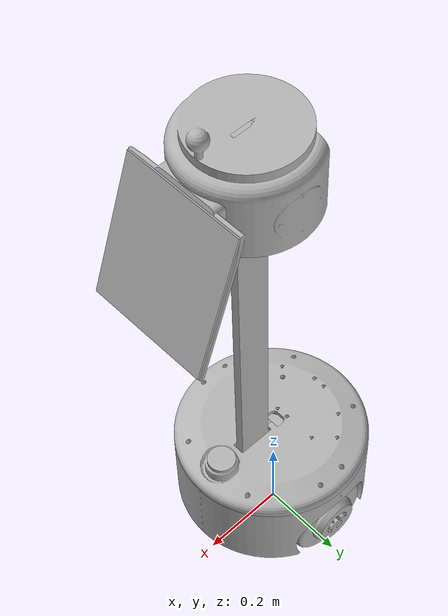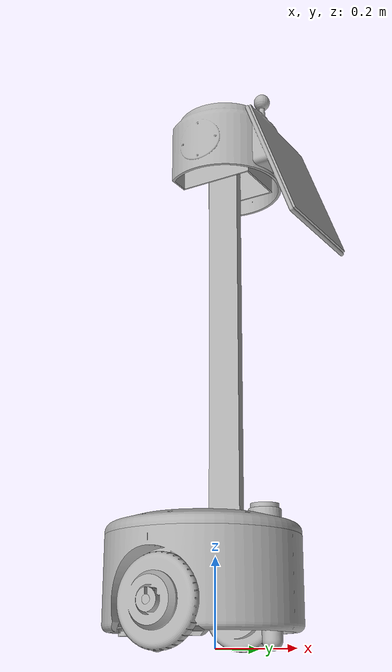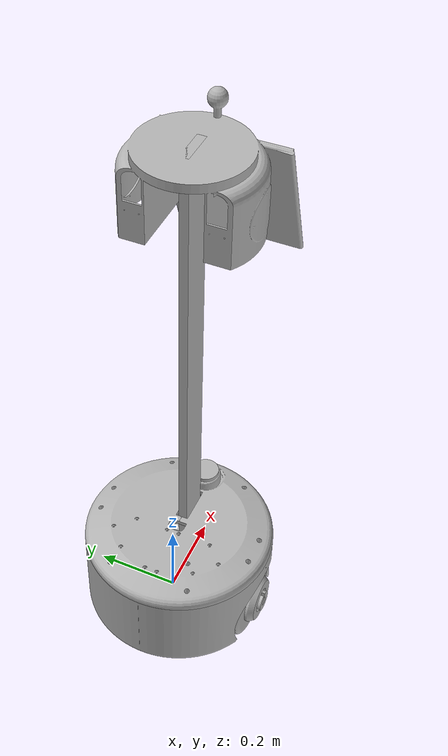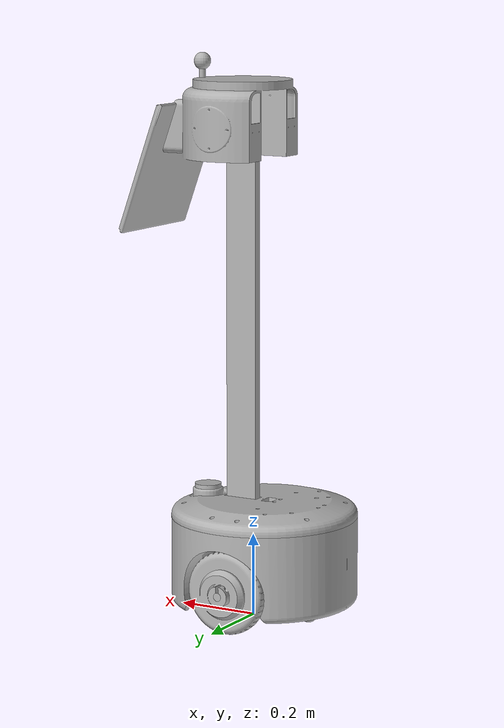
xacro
<?xml version="1.0" ?>
<robot name="teleop" xmlns:xacro="http://www.ros.org/wiki/xacro">

<xacro:include filename="$(find teleop_description)/urdf/materials.xacro" />

<xacro:include filename="$(find teleop_description)/gazebo/teleop_plugins.gazebo" />
<xacro:include filename="$(find teleop_description)/gazebo/teleop_physics.gazebo" />
<xacro:include filename="$(find teleop_description)/gazebo/teleop_materials.gazebo" />

<link name="base_link">
  <inertial>
    <origin xyz="-0.009796237291588206 -0.02416969245060742 0.13774020909647308" rpy="0 0 0"/>
    <mass value="13.264639019979176"/>
    <inertia ixx="0.22772" iyy="0.316552" izz="0.445985" ixy="2.7e-05" iyz="0.00039" ixz="-0.001439"/>
  </inertial>
  <visual>
    <origin xyz="0 0 0" rpy="0 0 0"/>
    <geometry>
      <mesh filename="package://teleop_description/meshes/base_link.stl" scale="0.001 0.001 0.001"/>
    </geometry>
    <material name="silver"/>
  </visual>
  <collision>
    <origin xyz="0 0 0" rpy="0 0 0"/>
    <geometry>
      <mesh filename="package://teleop_description/meshes/base_link.stl" scale="0.001 0.001 0.001"/>
    </geometry>
  </collision>
</link>

<link name="right_wheel_1">
  <inertial>
    <origin xyz="-1.4105010514405686e-05 0.04910413172197761 0.00010714406747770744" rpy="0 0 0"/>
    <mass value="1.7261568362175481"/>
    <inertia ixx="0.004182" iyy="0.007094" izz="0.004183" ixy="-1e-06" iyz="-3e-06" ixz="0.0"/>
  </inertial>
  <visual>
    <origin xyz="0.017 0.252 -0.093909" rpy="0 0 0"/>
    <geometry>
      <mesh filename="package://teleop_description/meshes/right_wheel_1.stl" scale="0.001 0.001 0.001"/>
    </geometry>
    <material name="silver"/>
  </visual>
  <collision>
    <origin xyz="0.017 0.252 -0.093909" rpy="0 0 0"/>
    <geometry>
      <mesh filename="package://teleop_description/meshes/right_wheel_1.stl" scale="0.001 0.001 0.001"/>
    </geometry>
  </collision>
</link>

<link name="left_wheel_1">
  <inertial>
    <origin xyz="-1.4071078718015662e-05 -0.049104329609291536 -5.389341369886613e-05" rpy="0 0 0"/>
    <mass value="1.7280872851640237"/>
    <inertia ixx="0.004186" iyy="0.007099" izz="0.004187" ixy="1e-06" iyz="3e-06" ixz="0.0"/>
  </inertial>
  <visual>
    <origin xyz="0.017 -0.202 -0.093909" rpy="0 0 0"/>
    <geometry>
      <mesh filename="package://teleop_description/meshes/left_wheel_1.stl" scale="0.001 0.001 0.001"/>
    </geometry>
    <material name="silver"/>
  </visual>
  <collision>
    <origin xyz="0.017 -0.202 -0.093909" rpy="0 0 0"/>
    <geometry>
      <mesh filename="package://teleop_description/meshes/left_wheel_1.stl" scale="0.001 0.001 0.001"/>
    </geometry>
  </collision>
</link>

<link name="top_lid_1">
  <inertial>
    <origin xyz="-0.22060018168570208 -6.724244268502613e-05 0.02315244561343688" rpy="0 0 0"/>
    <mass value="2.7724831434910127"/>
    <inertia ixx="0.040593" iyy="0.043951" izz="0.083717" ixy="-2.8e-05" iyz="-5e-06" ixz="-0.000179"/>
  </inertial>
  <visual>
    <origin xyz="-0.208 0.0248 -0.243909" rpy="0 0 0"/>
    <geometry>
      <mesh filename="package://teleop_description/meshes/top_lid_1.stl" scale="0.001 0.001 0.001"/>
    </geometry>
    <material name="silver"/>
  </visual>
  <collision>
    <origin xyz="-0.208 0.0248 -0.243909" rpy="0 0 0"/>
    <geometry>
      <mesh filename="package://teleop_description/meshes/top_lid_1.stl" scale="0.001 0.001 0.001"/>
    </geometry>
  </collision>
</link>

<link name="lidar_1">
  <inertial>
    <origin xyz="-3.757442158525137e-07 -3.4700532509923665e-08 0.004999876465341058" rpy="0 0 0"/>
    <mass value="0.03517405674775473"/>
    <inertia ixx="1e-05" iyy="1e-05" izz="1.9e-05" ixy="0.0" iyz="-0.0" ixz="0.0"/>
  </inertial>
  <visual>
    <origin xyz="-0.14058 0.022984 -0.296614" rpy="0 0 0"/>
    <geometry>
      <mesh filename="package://teleop_description/meshes/lidar_1.stl" scale="0.001 0.001 0.001"/>
    </geometry>
    <material name="silver"/>
  </visual>
  <collision>
    <origin xyz="-0.14058 0.022984 -0.296614" rpy="0 0 0"/>
    <geometry>
      <mesh filename="package://teleop_description/meshes/lidar_1.stl" scale="0.001 0.001 0.001"/>
    </geometry>
  </collision>
</link>

<link name="Long_Bar_1">
  <inertial>
    <origin xyz="-4.5102810375396984e-15 -3.122502256758253e-17 0.6099999954847075" rpy="0 0 0"/>
    <mass value="2.0691199999999985"/>
    <inertia ixx="0.256709" iyy="0.257743" izz="0.001173" ixy="0.0" iyz="-0.0" ixz="-0.0"/>
  </inertial>
  <visual>
    <origin xyz="-0.043 0.025 -0.073909" rpy="0 0 0"/>
    <geometry>
      <mesh filename="package://teleop_description/meshes/Long_Bar_1.stl" scale="0.001 0.001 0.001"/>
    </geometry>
    <material name="silver"/>
  </visual>
  <collision>
    <origin xyz="-0.043 0.025 -0.073909" rpy="0 0 0"/>
    <geometry>
      <mesh filename="package://teleop_description/meshes/Long_Bar_1.stl" scale="0.001 0.001 0.001"/>
    </geometry>
  </collision>
</link>

<link name="head_total_1">
  <inertial>
    <origin xyz="0.0976195965406295 -0.00018887457448027098 -0.09614440807337998" rpy="0 0 0"/>
    <mass value="3.6708825358302137"/>
    <inertia ixx="-0.037927" iyy="-0.024249" izz="0.063286" ixy="-0.000358" iyz="-0.002035" ixz="0.041962"/>
  </inertial>
  <visual>
    <origin xyz="-0.043 0.025 -1.293909" rpy="0 0 0"/>
    <geometry>
      <mesh filename="package://teleop_description/meshes/head_total_1.stl" scale="0.001 0.001 0.001"/>
    </geometry>
    <material name="silver"/>
  </visual>
  <collision>
    <origin xyz="-0.043 0.025 -1.293909" rpy="0 0 0"/>
    <geometry>
      <mesh filename="package://teleop_description/meshes/head_total_1.stl" scale="0.001 0.001 0.001"/>
    </geometry>
  </collision>
</link>

<link name="front_caster_1">
  <inertial>
    <origin xyz="-4.3576253716537394e-15 -2.393918396847994e-16 -0.03147500451529226" rpy="0 0 0"/>
    <mass value="0.10536607235828893"/>
    <inertia ixx="4.8e-05" iyy="4.8e-05" izz="2.5e-05" ixy="-0.0" iyz="-0.0" ixz="0.0"/>
  </inertial>
  <visual>
    <origin xyz="-0.155 0.025 -0.063909" rpy="0 0 0"/>
    <geometry>
      <mesh filename="package://teleop_description/meshes/front_caster_1.stl" scale="0.001 0.001 0.001"/>
    </geometry>
    <material name="silver"/>
  </visual>
  <collision>
    <origin xyz="-0.155 0.025 -0.063909" rpy="0 0 0"/>
    <geometry>
      <mesh filename="package://teleop_description/meshes/front_caster_1.stl" scale="0.001 0.001 0.001"/>
    </geometry>
  </collision>
</link>

<link name="back_caster_1">
  <inertial>
    <origin xyz="-4.496403249731884e-15 -1.6653345369377348e-16 -0.03147500451529227" rpy="0 0 0"/>
    <mass value="0.105366072358289"/>
    <inertia ixx="4.8e-05" iyy="4.8e-05" izz="2.5e-05" ixy="-0.0" iyz="0.0" ixz="0.0"/>
  </inertial>
  <visual>
    <origin xyz="0.139 0.025 -0.063909" rpy="0 0 0"/>
    <geometry>
      <mesh filename="package://teleop_description/meshes/back_caster_1.stl" scale="0.001 0.001 0.001"/>
    </geometry>
    <material name="silver"/>
  </visual>
  <collision>
    <origin xyz="0.139 0.025 -0.063909" rpy="0 0 0"/>
    <geometry>
      <mesh filename="package://teleop_description/meshes/back_caster_1.stl" scale="0.001 0.001 0.001"/>
    </geometry>
  </collision>
</link>

<joint name="right motor" type="continuous">
  <origin xyz="-0.017 -0.252 0.093909" rpy="0 0 0"/>
  <parent link="base_link"/>
  <child link="right_wheel_1"/>
  <axis xyz="0.0 1.0 0.0"/>
</joint>

<joint name="left motor" type="continuous">
  <origin xyz="-0.017 0.202 0.093909" rpy="0 0 0"/>
  <parent link="base_link"/>
  <child link="left_wheel_1"/>
  <axis xyz="0.0 1.0 0.0"/>
</joint>

<joint name="Rigid3" type="fixed">
  <origin xyz="0.208 -0.0248 0.243909" rpy="0 0 0"/>
  <parent link="base_link"/>
  <child link="top_lid_1"/>
</joint>

<joint name="Rigid4" type="fixed">
  <origin xyz="-0.06742 0.001816 0.052705" rpy="0 0 0"/>
  <parent link="top_lid_1"/>
  <child link="lidar_1"/>
</joint>

<joint name="Rigid5" type="fixed">
  <origin xyz="0.043 -0.025 0.073909" rpy="0 0 0"/>
  <parent link="base_link"/>
  <child link="Long_Bar_1"/>
</joint>

<joint name="Slider8" type="fixed">
  <origin xyz="0.0 0.0 1.22" rpy="0 0 0"/>
  <parent link="Long_Bar_1"/>
  <child link="head_total_1"/>
  <axis xyz="0.0 0.0 1.0"/>
  <limit upper="0.0" lower="-0.6" effort="100" velocity="100"/>
</joint>

<joint name="Rigid9" type="fixed">
  <origin xyz="0.155 -0.025 0.063909" rpy="0 0 0"/>
  <parent link="base_link"/>
  <child link="front_caster_1"/>
</joint>

<joint name="Rigid10" type="fixed">
  <origin xyz="-0.139 -0.025 0.063909" rpy="0 0 0"/>
  <parent link="base_link"/>
  <child link="back_caster_1"/>
</joint>

</robot>

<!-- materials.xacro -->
<robot name="teleop" xmlns:xacro="http://www.ros.org/wiki/xacro" >

<material name="silver">
  <color rgba="0.700 0.700 0.700 1.000"/>
</material>

</robot>

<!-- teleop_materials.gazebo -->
<robot name="teleop" xmlns:xacro="http://www.ros.org/wiki/xacro" >

<xacro:property name="body_color" value="Gazebo/Purple" />
<xacro:property name="green_color" value="Gazebo/Green" />
<xacro:property name="red_color" value="Gazebo/RedBright" />
<xacro:property name="black_color" value="Gazebo/Black" />
<xacro:property name="yellow_color" value="Gazebo/Yellow" />

<gazebo>
  <plugin name="control" filename="libgazebo_ros_control.so"/>
</gazebo>
<gazebo reference="base_link">
</gazebo>

<gazebo reference="right_wheel_1">
  <material>${black_color}</material>
</gazebo>

<gazebo reference="left_wheel_1">
  <material>${black_color}</material>
</gazebo>

<gazebo reference="top_lid_1">
  <material>${green_color}</material>
</gazebo>

<gazebo reference="lidar_1">
  <material>${red_color}</material>
</gazebo>

<gazebo reference="Long_Bar_1">
  <material>${yellow_color}</material>
</gazebo>

<gazebo reference="head_total_1">
  <material>${green_color}</material>
</gazebo>

<gazebo reference="front_caster_1">
  <material>${body_color}</material>
</gazebo>

<gazebo reference="back_caster_1">
  <material>${body_color}</material>
</gazebo>

</robot>
